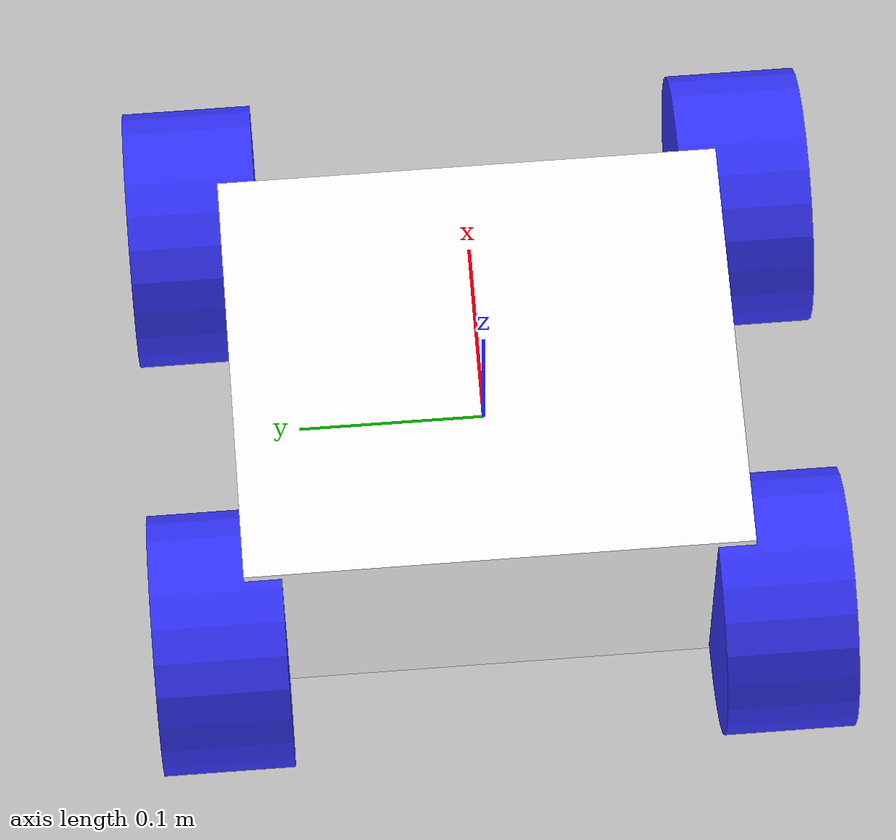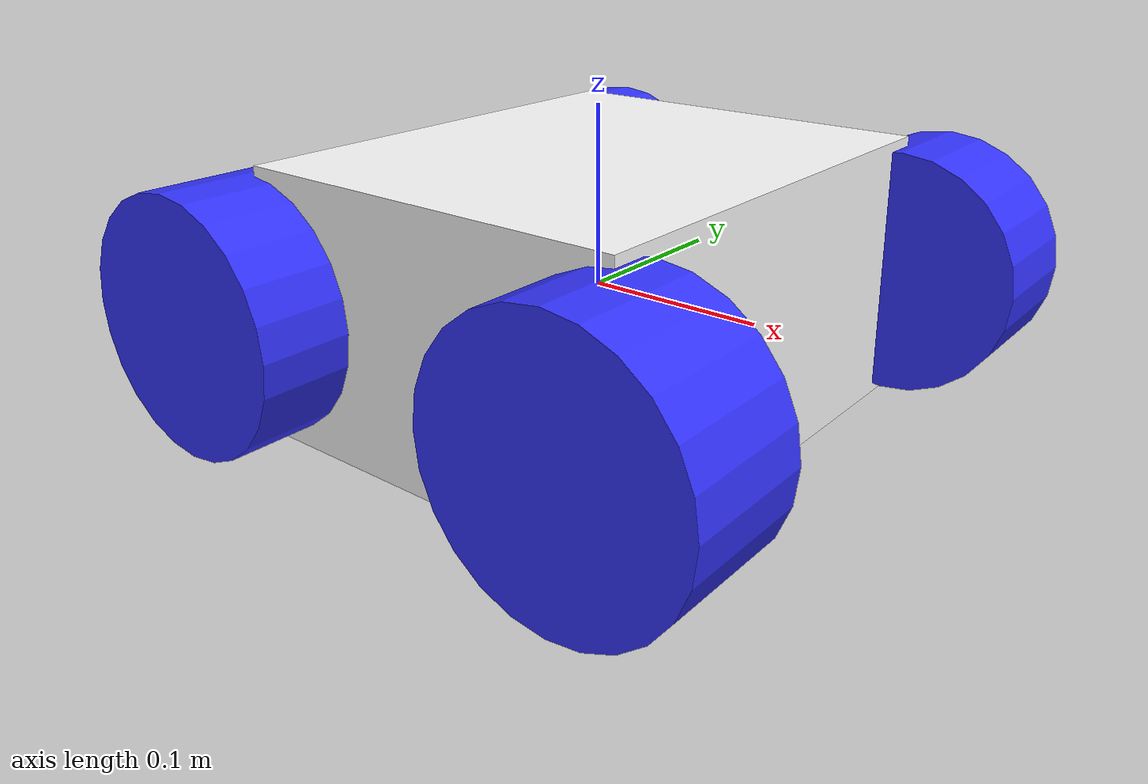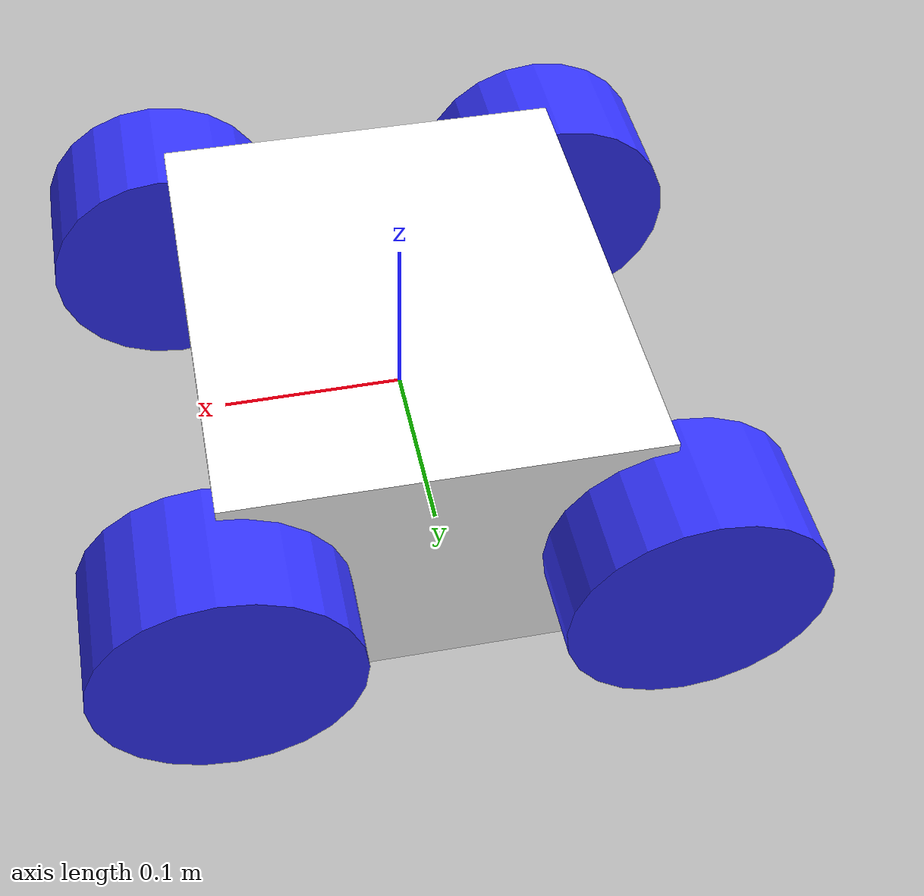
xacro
<?xml version="1.0"?>
<robot xmlns:xacro="http://www.ros.org/wiki/xacro" >

    <xacro:include filename="inertial_macros.xacro"/>

    <material name="white">
        <color rgba="1 1 1 1" />
    </material>

    <material name="orange">
        <color rgba="1 0.3 0.1 1"/>
    </material>

    <material name="blue">
        <color rgba="0.2 0.2 1 1"/>
    </material>

    <material name="black">
        <color rgba="0 0 0 1"/>
    </material>

    <material name="red">
        <color rgba="1 0 0 1"/>
    </material>

    <!-- BASE LINK -->
    <link name="base_link"></link>

    <joint name="chassis_joint" type="fixed">
        <parent link="base_link"/>
        <child link="chassis"/>
        <origin xyz="-0 0 0"/>
    </joint>

    <!--BASE FOOTPRINT LINK-->

    <joint name="base_footprint_joint" type="fixed">
        <parent link="base_link"/>
        <child link="base_footprint"/>
        <origin xyz="0 0 0" rpy="0 0 0"/>
    </joint>

    <link name="base_footprint">
    </link>

    <!-- CHASSIS LINK -->

    <link name="chassis">
        <visual>
            <origin xyz="0 0 0"/>
            <geometry>
                <box size="0.23 0.27 0.15"/>
            </geometry>
            <material name="white"/>
        </visual>

        <collision>
            <origin xyz="0 0 0"/>
            <geometry>
                <box size="0.23 0.27 0.15"/>
            </geometry>
        </collision>
        <xacro:inertial_box mass="3" x="0.23" y="0.27" z="0.15">
            <origin xyz="0 0 0" rpy="0 0 0"/>
        </xacro:inertial_box>
    </link>

    <gazebo reference="chassis">
        <material>Gazebo/Orange</material>
    </gazebo>

    <!-- LEFT WHEEL FRONT LINK -->

    <joint name="left_front_joint" type="continuous">
        <parent link="base_link"/>
        <child link="left_wheel_front"/>
        <origin xyz="0.12 0.15 0" rpy="-${pi/2} 0 0" />
        <axis xyz="0 0 1"/>
    </joint>

    <link name="left_wheel_front">
        <visual>
            <origin xyz="0 0 0"/>
            <geometry>
                <cylinder radius="0.07" length="0.07"/>
            </geometry>
            <material name="blue"/>
        </visual>

        <collision>
            <geometry>
                <cylinder radius="0.07" length="0.07"/>
            </geometry>
        </collision>joint

        <xacro:inertial_cylinder mass="0.25" radius="0.07" length="0.07">
            <origin xyz="0 0 0" rpy="0 0 0"/>
        </xacro:inertial_cylinder>
    </link>

    <gazebo reference="left_wheel_front">
        <material>Gazebo/Blue</material>
    </gazebo>

    <!-- LEFT WHEEL BACK LINK -->

    <joint name="left_back_joint" type="fixed">
        <parent link="base_link"/>
        <child link="left_wheel_back"/>
        <origin xyz="-0.12 0.15 0" rpy="-${pi/2} 0 0"/>
        <axis xyz="0 0 -1"/>
    </joint>

    <link name="left_wheel_back">
        <visual>
            <origin xyz="0 0 0"/>
            <geometry>
                <cylinder radius="0.07" length="0.07"/>
            </geometry>
            <material name="blue"/>
        </visual>

        <collision>
            <geometry>
                <cylinder radius="0.07" length="0.07"/>
            </geometry>
        </collision>

        <xacro:inertial_cylinder mass="0.25" radius="0.07" length="0.07">
            <origin xyz="0 0 0" rpy="0 0 0"/>
        </xacro:inertial_cylinder>
    </link>

    <gazebo reference="left_wheel_back">
        <material>Gazebo/Blue</material>
        <mu1 value="0.001"/>
        <mu2 value="0.001"/>
    </gazebo>

    <!-- RIGHT WHEEL FRONT LINK -->

    <joint name="right_front_joint" type="continuous">
        <parent link="base_link"/>
        <child link="right_wheel_front"/>
        <origin xyz="0.12 -0.15 0" rpy="${pi/2} 0 0" />
        <axis xyz="0 0 -1"/>
        <command_interface name="velocity"/>
        <state_interface name="position"/>
    </joint>

    <link name="right_wheel_front">
        <visual>
            <origin xyz="0 0 0"/>
            <geometry>
                <cylinder radius="0.07" length="0.07"/>
            </geometry>
            <material name="blue"/>
        </visual>

        <collision>
            <geometry>
                <cylinder radius="0.07" length="0.07"/>
            </geometry>
        </collision>

        <xacro:inertial_cylinder mass="0.25" radius="0.07" length="0.07">
            <origin xyz="0 0 0" rpy="0 0 0"/>
        </xacro:inertial_cylinder>
    </link>

    <gazebo reference="right_wheel_front">
        <material>Gazebo/Blue</material>
    </gazebo>

     <!-- RIGHT WHEEL BACK LINK -->

     <joint name="right_back_joint" type="continuous">
        <parent link="base_link"/>
        <child link="right_wheel_back"/>
        <origin xyz="-0.12 -0.15 0" rpy="${pi/2} 0 0" />
        <axis xyz="0 0 -1"/>
    </joint>

    <link name="right_wheel_back">
        <visual>
            <origin xyz="0 0 0"/>
            <geometry>
                <cylinder radius="0.07" length="0.07"/>
            </geometry>
            <material name="blue"/>
        </visual>

        <collision>
            <geometry>
                <cylinder radius="0.07" length="0.07"/>
            </geometry>
            <joint name="right_wheel_back_joint" type="fixed">
               <parent link="base_link"/>
               <child link="right_wheel_back"/>
               <origin xyz="-0.12 -0.15 0" rpy="${pi/2} 0 0" />
               <axis xyz="0 0 -1"/>
           </joint>

           <link name="right_wheel_back">
               <visual>
                   <origin xyz="0 0 0"/>
                   <geometry>
                       <cylinder radius="0.07" length="0.07"/>
                   </geometry>
                   <material name="blue"/>
               </visual>

               <collision>
                   <geometry>
                       <cylinder radius="0.07" length="0.07"/>
                   </geometry>
               </collision>

               <xacro:inertial_cylinder mass="0.25" radius="0.07" length="0.07">
                   <origin xyz="0 0 0" rpy="0 0 0"/>
               </xacro:inertial_cylinder>
           </link>

        </collision>

        <xacro:inertial_cylinder mass="0.25" radius="0.07" length="0.07">
            <origin xyz="0 0 0" rpy="0 0 0"/>
        </xacro:inertial_cylinder>
    </link>

    <gazebo reference="right_wheel_back">
        <material>Gazebo/Blue</material>
        <mu1 value="0.001"/>
        <mu2 value="0.001"/>
    </gazebo>

</robot>
